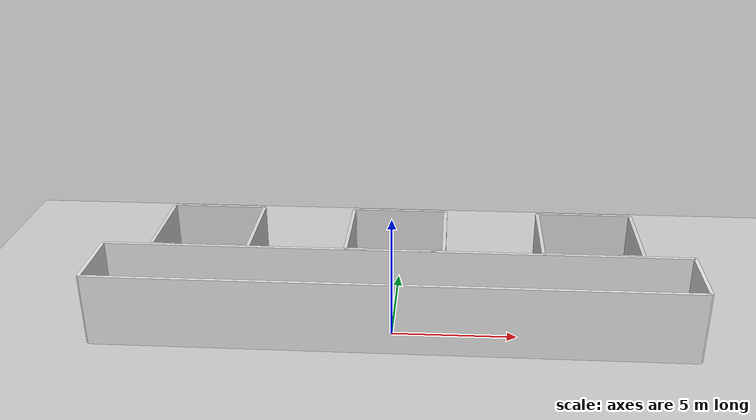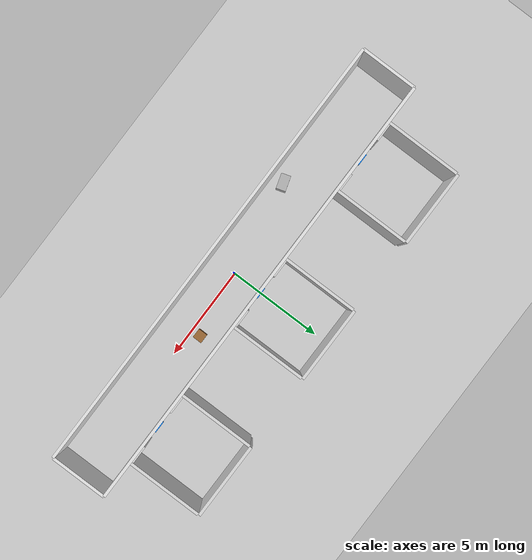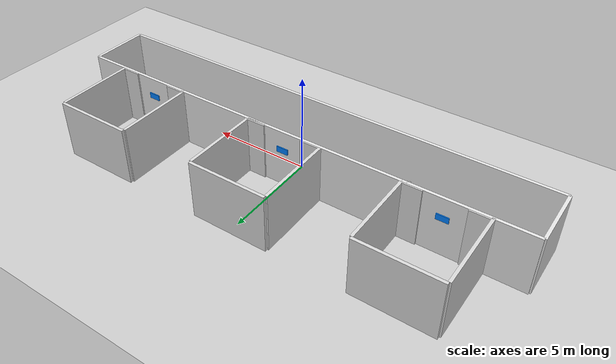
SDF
<?xml version="1.0" ?>
<sdf version="1.6">
  <world name="office_floor">

    <!-- Lighting -->
    <light type="directional" name="sun">
      <cast_shadows>true</cast_shadows>
      <pose>0 0 10 0 0 0</pose>
      <diffuse>0.8 0.8 0.8 1</diffuse>
      <specular>0.2 0.2 0.2 1</specular>
      <direction>-0.5 0.1 -0.9</direction>
    </light>

    <light type="point" name="ceiling_light_1">
      <pose>0 0 3 0 0 0</pose>
      <diffuse>1 1 1 1</diffuse>
      <specular>0.1 0.1 0.1 1</specular>
      <attenuation>
        <range>10</range>
        <constant>0.2</constant>
        <linear>0.1</linear>
        <quadratic>0.01</quadratic>
      </attenuation>
    </light>

    <!-- Physics -->
    <physics type="ode">
      <real_time_update_rate>1000.0</real_time_update_rate>
      <max_step_size>0.001</max_step_size>
      <real_time_factor>1</real_time_factor>
    </physics>

    <!-- Ground plane -->
    <model name="ground_plane">
      <static>true</static>
      <link name="link">
        <collision name="collision">
          <geometry><plane><normal>0 0 1</normal><size>50 50</size></plane></geometry>
          <surface><friction><ode><mu>100</mu><mu2>50</mu2></ode></friction></surface>
        </collision>
        <visual name="visual">
          <geometry><plane><normal>0 0 1</normal><size>50 50</size></plane></geometry>
          <material><script>
            <uri>file://media/materials/scripts/gazebo.material</uri>
            <name>Gazebo/Grey</name>
          </script></material>
        </visual>
      </link>
    </model>

    <!-- North wall (y = 1.5) -->
    <model name="wall_north">
      <static>true</static>
      <pose>0 1.5 1.5 0 0 0</pose>
      <link name="link">
        <collision name="c"><geometry><box><size>24 0.15 3</size></box></geometry></collision>
        <visual name="v"><geometry><box><size>24 0.15 3</size></box></geometry>
          <material><ambient>0.9 0.9 0.9 1</ambient></material></visual>
      </link>
    </model>

    <!-- South wall (y = -1.5) -->
    <model name="wall_south">
      <static>true</static>
      <pose>0 -1.5 1.5 0 0 0</pose>
      <link name="link">
        <collision name="c"><geometry><box><size>24 0.15 3</size></box></geometry></collision>
        <visual name="v"><geometry><box><size>24 0.15 3</size></box></geometry>
          <material><ambient>0.9 0.9 0.9 1</ambient></material></visual>
      </link>
    </model>

    <!-- East wall -->
    <model name="wall_east">
      <static>true</static>
      <pose>12 0 1.5 0 0 0</pose>
      <link name="link">
        <collision name="c"><geometry><box><size>0.15 3 3</size></box></geometry></collision>
        <visual name="v"><geometry><box><size>0.15 3 3</size></box></geometry>
          <material><ambient>0.9 0.9 0.9 1</ambient></material></visual>
      </link>
    </model>

    <!-- West wall -->
    <model name="wall_west">
      <static>true</static>
      <pose>-12 0 1.5 0 0 0</pose>
      <link name="link">
        <collision name="c"><geometry><box><size>0.15 3 3</size></box></geometry></collision>
        <visual name="v"><geometry><box><size>0.15 3 3</size></box></geometry>
          <material><ambient>0.9 0.9 0.9 1</ambient></material></visual>
      </link>
    </model>

    <!-- Room 301 (x: -10 to -6, y: 1.5 to 5.5) -->
    <model name="room301_north"><static>true</static><pose>-8 5.575 1.5 0 0 0</pose>
      <link name="link"><collision name="c"><geometry><box><size>4 0.15 3</size></box></geometry></collision>
      <visual name="v"><geometry><box><size>4 0.15 3</size></box></geometry><material><ambient>0.85 0.85 0.85 1</ambient></material></visual></link></model>
    <model name="room301_east"><static>true</static><pose>-6 3.5 1.5 0 0 0</pose>
      <link name="link"><collision name="c"><geometry><box><size>0.15 4 3</size></box></geometry></collision>
      <visual name="v"><geometry><box><size>0.15 4 3</size></box></geometry><material><ambient>0.85 0.85 0.85 1</ambient></material></visual></link></model>
    <model name="room301_west"><static>true</static><pose>-10 3.5 1.5 0 0 0</pose>
      <link name="link"><collision name="c"><geometry><box><size>0.15 4 3</size></box></geometry></collision>
      <visual name="v"><geometry><box><size>0.15 4 3</size></box></geometry><material><ambient>0.85 0.85 0.85 1</ambient></material></visual></link></model>
    <!-- South wall with 1m doorway centered -->
    <model name="room301_south_l"><static>true</static><pose>-9.5 1.575 1.5 0 0 0</pose>
      <link name="link"><collision name="c"><geometry><box><size>1 0.15 3</size></box></geometry></collision>
      <visual name="v"><geometry><box><size>1 0.15 3</size></box></geometry><material><ambient>0.85 0.85 0.85 1</ambient></material></visual></link></model>
    <model name="room301_south_r"><static>true</static><pose>-6.5 1.575 1.5 0 0 0</pose>
      <link name="link"><collision name="c"><geometry><box><size>1 0.15 3</size></box></geometry></collision>
      <visual name="v"><geometry><box><size>1 0.15 3</size></box></geometry><material><ambient>0.85 0.85 0.85 1</ambient></material></visual></link></model>
    <!-- Room number sign (colored box as placeholder for text) -->
    <model name="sign_301"><static>true</static><pose>-8 1.6 2 0 0 0</pose>
      <link name="link">
        <visual name="v"><geometry><box><size>0.6 0.05 0.3</size></box></geometry>
          <material><ambient>0 0.5 1 1</ambient><diffuse>0 0.5 1 1</diffuse></material></visual>
      </link>
    </model>

    <!-- Room 303 (x: -2 to 2, y: 1.5 to 5.5) -->
    <model name="room303_north"><static>true</static><pose>0 5.575 1.5 0 0 0</pose>
      <link name="link"><collision name="c"><geometry><box><size>4 0.15 3</size></box></geometry></collision>
      <visual name="v"><geometry><box><size>4 0.15 3</size></box></geometry><material><ambient>0.85 0.85 0.85 1</ambient></material></visual></link></model>
    <model name="room303_east"><static>true</static><pose>2 3.5 1.5 0 0 0</pose>
      <link name="link"><collision name="c"><geometry><box><size>0.15 4 3</size></box></geometry></collision>
      <visual name="v"><geometry><box><size>0.15 4 3</size></box></geometry><material><ambient>0.85 0.85 0.85 1</ambient></material></visual></link></model>
    <model name="room303_west"><static>true</static><pose>-2 3.5 1.5 0 0 0</pose>
      <link name="link"><collision name="c"><geometry><box><size>0.15 4 3</size></box></geometry></collision>
      <visual name="v"><geometry><box><size>0.15 4 3</size></box></geometry><material><ambient>0.85 0.85 0.85 1</ambient></material></visual></link></model>
    <model name="room303_south_l"><static>true</static><pose>-1.5 1.575 1.5 0 0 0</pose>
      <link name="link"><collision name="c"><geometry><box><size>1 0.15 3</size></box></geometry></collision>
      <visual name="v"><geometry><box><size>1 0.15 3</size></box></geometry><material><ambient>0.85 0.85 0.85 1</ambient></material></visual></link></model>
    <model name="room303_south_r"><static>true</static><pose>1.5 1.575 1.5 0 0 0</pose>
      <link name="link"><collision name="c"><geometry><box><size>1 0.15 3</size></box></geometry></collision>
      <visual name="v"><geometry><box><size>1 0.15 3</size></box></geometry><material><ambient>0.85 0.85 0.85 1</ambient></material></visual></link></model>
    <model name="sign_303"><static>true</static><pose>0 1.6 2 0 0 0</pose>
      <link name="link">
        <visual name="v"><geometry><box><size>0.6 0.05 0.3</size></box></geometry>
          <material><ambient>0 0.5 1 1</ambient><diffuse>0 0.5 1 1</diffuse></material></visual>
      </link>
    </model>

    <!-- Room 305 (x: 6 to 10, y: 1.5 to 5.5) -->
    <model name="room305_north"><static>true</static><pose>8 5.575 1.5 0 0 0</pose>
      <link name="link"><collision name="c"><geometry><box><size>4 0.15 3</size></box></geometry></collision>
      <visual name="v"><geometry><box><size>4 0.15 3</size></box></geometry><material><ambient>0.85 0.85 0.85 1</ambient></material></visual></link></model>
    <model name="room305_east"><static>true</static><pose>10 3.5 1.5 0 0 0</pose>
      <link name="link"><collision name="c"><geometry><box><size>0.15 4 3</size></box></geometry></collision>
      <visual name="v"><geometry><box><size>0.15 4 3</size></box></geometry><material><ambient>0.85 0.85 0.85 1</ambient></material></visual></link></model>
    <model name="room305_west"><static>true</static><pose>6 3.5 1.5 0 0 0</pose>
      <link name="link"><collision name="c"><geometry><box><size>0.15 4 3</size></box></geometry></collision>
      <visual name="v"><geometry><box><size>0.15 4 3</size></box></geometry><material><ambient>0.85 0.85 0.85 1</ambient></material></visual></link></model>
    <model name="room305_south_l"><static>true</static><pose>6.5 1.575 1.5 0 0 0</pose>
      <link name="link"><collision name="c"><geometry><box><size>1 0.15 3</size></box></geometry></collision>
      <visual name="v"><geometry><box><size>1 0.15 3</size></box></geometry><material><ambient>0.85 0.85 0.85 1</ambient></material></visual></link></model>
    <model name="room305_south_r"><static>true</static><pose>9.5 1.575 1.5 0 0 0</pose>
      <link name="link"><collision name="c"><geometry><box><size>1 0.15 3</size></box></geometry></collision>
      <visual name="v"><geometry><box><size>1 0.15 3</size></box></geometry><material><ambient>0.85 0.85 0.85 1</ambient></material></visual></link></model>
    <model name="sign_305"><static>true</static><pose>8 1.6 2 0 0 0</pose>
      <link name="link">
        <visual name="v"><geometry><box><size>0.6 0.05 0.3</size></box></geometry>
          <material><ambient>0 0.5 1 1</ambient><diffuse>0 0.5 1 1</diffuse></material></visual>
      </link>
    </model>

    <!-- ═══════════════════════════════════════════════════════════
         OBSTACLES (simulate chairs / carts in hallway)
         ═══════════════════════════════════════════════════════════ -->

    <!-- Chair near room 303 -->
    <model name="obstacle_chair_1">
      <static>false</static>
      <pose>3.5 0.5 0.25 0 0 0</pose>
      <link name="link">
        <inertial><mass>5</mass></inertial>
        <collision name="c"><geometry><box><size>0.5 0.5 0.5</size></box></geometry></collision>
        <visual name="v"><geometry><box><size>0.5 0.5 0.5</size></box></geometry>
          <material><ambient>0.6 0.4 0.2 1</ambient></material></visual>
      </link>
    </model>

    <!-- Cart blocking part of hallway -->
    <model name="obstacle_cart_1">
      <static>false</static>
      <pose>-5 -0.8 0.4 0 0 0.3</pose>
      <link name="link">
        <inertial><mass>20</mass></inertial>
        <collision name="c"><geometry><box><size>0.8 0.5 0.8</size></box></geometry></collision>
        <visual name="v"><geometry><box><size>0.8 0.5 0.8</size></box></geometry>
          <material><ambient>0.7 0.7 0.7 1</ambient></material></visual>
      </link>
    </model>

  </world>
</sdf>
